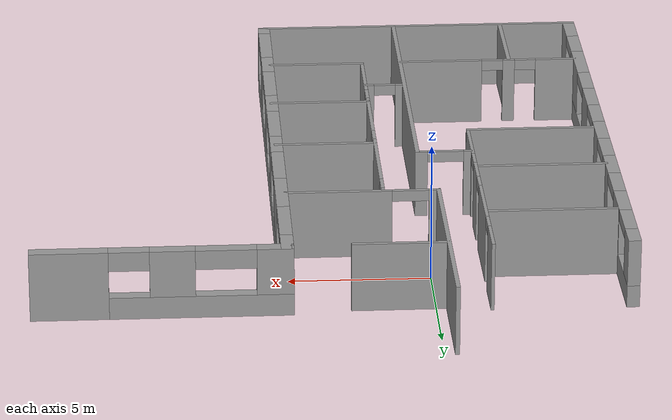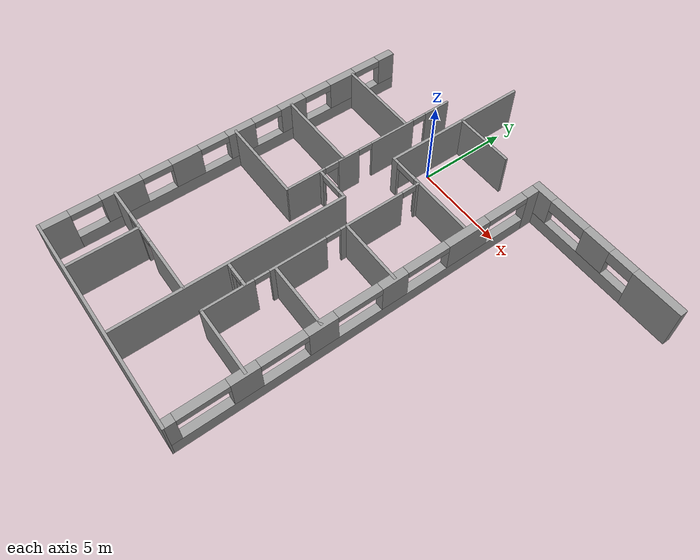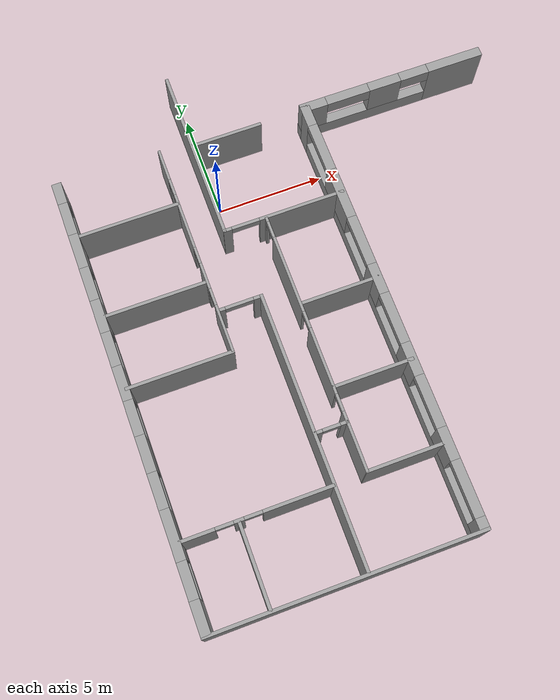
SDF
<sdf version="1.5">
 <model name="CentroPiaggio">
  <pose>1.2255 -0.6475 0 0 -0 0</pose>
  <link name="Wall_101">
   <collision name="Wall_101_Collision">
    <geometry><box><size>12.6 0.15 2.5</size></box></geometry>
    <pose>0 0 1.25 0 -0 0</pose>
   </collision>
   <visual name="Wall_101_Visual">
    <pose>0 0 1.25 0 -0 0</pose>
    <geometry><box><size>12.6 0.15 2.5</size></box></geometry>
    <material>
     <script><uri>file://media/materials/scripts/gazebo.material</uri><name>Gazebo/Grey</name></script>
     <ambient>1 1 1 1</ambient>
    </material>
   </visual>
   <pose>-1.14914 -11.073 0 0 0 -1.5708</pose>
  </link>
  <link name="Wall_103">
   <pose>-2.12541 -4.8452 0 0 -0 0</pose>
   <visual name="Wall_103_Visual_0">
    <pose>-0.873215 0 1.25 0 -0 0</pose>
    <geometry><box><size>0.353569 0.15 2.5</size></box></geometry>
    <material>
     <script><uri>file://media/materials/scripts/gazebo.material</uri><name>Gazebo/Grey</name></script>
     <ambient>1 1 1 1</ambient>
    </material>
   </visual>
   <collision name="Wall_103_Collision_0">
    <geometry><box><size>0.353569 0.15 2.5</size></box></geometry>
    <pose>-0.873215 0 1.25 0 -0 0</pose>
   </collision>
   <visual name="Wall_103_Visual_1">
    <pose>0.826785 0 1.25 0 -0 0</pose>
    <geometry><box><size>0.446431 0.15 2.5</size></box></geometry>
    <material>
     <script><uri>file://media/materials/scripts/gazebo.material</uri><name>Gazebo/Grey</name></script>
     <ambient>1 1 1 1</ambient>
    </material>
   </visual>
   <collision name="Wall_103_Collision_1">
    <geometry><box><size>0.446431 0.15 2.5</size></box></geometry>
    <pose>0.826785 0 1.25 0 -0 0</pose>
   </collision>
   <visual name="Wall_103_Visual_2">
    <pose>-0.046431 0 2.3 0 -0 0</pose>
    <geometry><box><size>1.3 0.15 0.4</size></box></geometry>
    <material>
     <script><uri>file://media/materials/scripts/gazebo.material</uri><name>Gazebo/Grey</name></script>
     <ambient>1 1 1 1</ambient>
    </material>
   </visual>
   <collision name="Wall_103_Collision_2">
    <geometry><box><size>1.3 0.15 0.4</size></box></geometry>
    <pose>-0.046431 0 2.3 0 -0 0</pose>
   </collision>
  </link>
  <link name="Wall_105">
   <pose>-4.51143 -13.6006 0 0 -0 0</pose>
   <visual name="Wall_105_Visual_0">
    <pose>-2.59656 0 1.25 0 -0 0</pose>
    <geometry><box><size>1.55688 0.15 2.5</size></box></geometry>
    <material>
     <script><uri>file://media/materials/scripts/gazebo.material</uri><name>Gazebo/Grey</name></script>
     <ambient>1 1 1 1</ambient>
    </material>
   </visual>
   <collision name="Wall_105_Collision_0">
    <geometry><box><size>1.55688 0.15 2.5</size></box></geometry>
    <pose>-2.59656 0 1.25 0 -0 0</pose>
   </collision>
   <visual name="Wall_105_Visual_1">
    <pose>-0.791931 0 1.25 0 -0 0</pose>
    <geometry><box><size>0.452371 0.15 2.5</size></box></geometry>
    <material>
     <script><uri>file://media/materials/scripts/gazebo.material</uri><name>Gazebo/Grey</name></script>
     <ambient>1 1 1 1</ambient>
    </material>
   </visual>
   <collision name="Wall_105_Collision_1">
    <geometry><box><size>0.452371 0.15 2.5</size></box></geometry>
    <pose>-0.791931 0 1.25 0 -0 0</pose>
   </collision>
   <visual name="Wall_105_Visual_2">
    <pose>1.80463 0 1.25 0 -0 0</pose>
    <geometry><box><size>3.14074 0.15 2.5</size></box></geometry>
    <material>
     <script><uri>file://media/materials/scripts/gazebo.material</uri><name>Gazebo/Grey</name></script>
     <ambient>1 1 1 1</ambient>
    </material>
   </visual>
   <collision name="Wall_105_Collision_2">
    <geometry><box><size>3.14074 0.15 2.5</size></box></geometry>
    <pose>1.80463 0 1.25 0 -0 0</pose>
   </collision>
   <visual name="Wall_105_Visual_3">
    <pose>-1.41812 0 2.3 0 -0 0</pose>
    <geometry><box><size>0.8 0.15 0.4</size></box></geometry>
    <material>
     <script><uri>file://media/materials/scripts/gazebo.material</uri><name>Gazebo/Grey</name></script>
     <ambient>1 1 1 1</ambient>
    </material>
   </visual>
   <collision name="Wall_105_Collision_3">
    <geometry><box><size>0.8 0.15 0.4</size></box></geometry>
    <pose>-1.41812 0 2.3 0 -0 0</pose>
   </collision>
   <visual name="Wall_105_Visual_4">
    <pose>-0.165745 0 2.3 0 -0 0</pose>
    <geometry><box><size>0.8 0.15 0.4</size></box></geometry>
    <material>
     <script><uri>file://media/materials/scripts/gazebo.material</uri><name>Gazebo/Grey</name></script>
     <ambient>1 1 1 1</ambient>
    </material>
   </visual>
   <collision name="Wall_105_Collision_4">
    <geometry><box><size>0.8 0.15 0.4</size></box></geometry>
    <pose>-0.165745 0 2.3 0 -0 0</pose>
   </collision>
  </link>
  <link name="Wall_107">
   <collision name="Wall_107_Collision">
    <geometry><box><size>3.75 0.15 2.5</size></box></geometry>
    <pose>0 0 1.25 0 -0 0</pose>
   </collision>
   <visual name="Wall_107_Visual">
    <pose>0 0 1.25 0 -0 0</pose>
    <geometry><box><size>3.75 0.15 2.5</size></box></geometry>
    <material>
     <script><uri>file://media/materials/scripts/gazebo.material</uri><name>Gazebo/Grey</name></script>
     <ambient>1 1 1 1</ambient>
    </material>
   </visual>
   <pose>-5.30991 -15.504 0 0 0 -1.5708</pose>
  </link>
  <link name="Wall_109">
   <pose>-0.408984 -11.3179 0 0 -0 0</pose>
   <visual name="Wall_109_Visual_0">
    <pose>-0.572763 0 1.25 0 -0 0</pose>
    <geometry><box><size>0.354473 0.15 2.5</size></box></geometry>
    <material>
     <script><uri>file://media/materials/scripts/gazebo.material</uri><name>Gazebo/Grey</name></script>
     <ambient>1 1 1 1</ambient>
    </material>
   </visual>
   <collision name="Wall_109_Collision_0">
    <geometry><box><size>0.354473 0.15 2.5</size></box></geometry>
    <pose>-0.572763 0 1.25 0 -0 0</pose>
   </collision>
   <visual name="Wall_109_Visual_1">
    <pose>0.577237 0 1.25 0 -0 0</pose>
    <geometry><box><size>0.345527 0.15 2.5</size></box></geometry>
    <material>
     <script><uri>file://media/materials/scripts/gazebo.material</uri><name>Gazebo/Grey</name></script>
     <ambient>1 1 1 1</ambient>
    </material>
   </visual>
   <collision name="Wall_109_Collision_1">
    <geometry><box><size>0.345527 0.15 2.5</size></box></geometry>
    <pose>0.577237 0 1.25 0 -0 0</pose>
   </collision>
   <visual name="Wall_109_Visual_2">
    <pose>0.004473 0 2.3 0 -0 0</pose>
    <geometry><box><size>0.8 0.15 0.4</size></box></geometry>
    <material>
     <script><uri>file://media/materials/scripts/gazebo.material</uri><name>Gazebo/Grey</name></script>
     <ambient>1 1 1 1</ambient>
    </material>
   </visual>
   <collision name="Wall_109_Collision_2">
    <geometry><box><size>0.8 0.15 0.4</size></box></geometry>
    <pose>0.004473 0 2.3 0 -0 0</pose>
   </collision>
  </link>
  <link name="Wall_19">
   <pose>8.1975 3.1475 0 0 -0 3.14159</pose>
   <visual name="Wall_19_Visual_0">
    <pose>-3.17005 0 1.25 0 -0 0</pose>
    <geometry><box><size>2.7099 0.45 2.5</size></box></geometry>
    <material>
     <script><uri>file://media/materials/scripts/gazebo.material</uri><name>Gazebo/Grey</name></script>
     <ambient>1 1 1 1</ambient>
    </material>
   </visual>
   <collision name="Wall_19_Collision_0">
    <geometry><box><size>2.7099 0.45 2.5</size></box></geometry>
    <pose>-3.17005 0 1.25 0 -0 0</pose>
   </collision>
   <visual name="Wall_19_Visual_1">
    <pose>1.35495 0 0.4 0 -0 0</pose>
    <geometry><box><size>6.3401 0.45 0.8</size></box></geometry>
    <material>
     <script><uri>file://media/materials/scripts/gazebo.material</uri><name>Gazebo/Grey</name></script>
     <ambient>1 1 1 1</ambient>
    </material>
   </visual>
   <collision name="Wall_19_Collision_1">
    <geometry><box><size>6.3401 0.45 0.8</size></box></geometry>
    <pose>1.35495 0 0.4 0 -0 0</pose>
   </collision>
   <visual name="Wall_19_Visual_2">
    <pose>0.36804 0 1.65 0 -0 0</pose>
    <geometry><box><size>1.56628 0.45 1.7</size></box></geometry>
    <material>
     <script><uri>file://media/materials/scripts/gazebo.material</uri><name>Gazebo/Grey</name></script>
     <ambient>1 1 1 1</ambient>
    </material>
   </visual>
   <collision name="Wall_19_Collision_2">
    <geometry><box><size>1.56628 0.45 1.7</size></box></geometry>
    <pose>0.36804 0 1.65 0 -0 0</pose>
   </collision>
   <visual name="Wall_19_Visual_3">
    <pose>3.88809 0 1.65 0 -0 0</pose>
    <geometry><box><size>1.27382 0.45 1.7</size></box></geometry>
    <material>
     <script><uri>file://media/materials/scripts/gazebo.material</uri><name>Gazebo/Grey</name></script>
     <ambient>1 1 1 1</ambient>
    </material>
   </visual>
   <collision name="Wall_19_Collision_3">
    <geometry><box><size>1.27382 0.45 1.7</size></box></geometry>
    <pose>3.88809 0 1.65 0 -0 0</pose>
   </collision>
   <visual name="Wall_19_Visual_4">
    <pose>-1.1151 0 2.15 0 -0 0</pose>
    <geometry><box><size>1.4 0.45 0.7</size></box></geometry>
    <material>
     <script><uri>file://media/materials/scripts/gazebo.material</uri><name>Gazebo/Grey</name></script>
     <ambient>1 1 1 1</ambient>
    </material>
   </visual>
   <collision name="Wall_19_Collision_4">
    <geometry><box><size>1.4 0.45 0.7</size></box></geometry>
    <pose>-1.1151 0 2.15 0 -0 0</pose>
   </collision>
   <visual name="Wall_19_Visual_5">
    <pose>2.20118 0 2.15 0 -0 0</pose>
    <geometry><box><size>2.1 0.45 0.7</size></box></geometry>
    <material>
     <script><uri>file://media/materials/scripts/gazebo.material</uri><name>Gazebo/Grey</name></script>
     <ambient>1 1 1 1</ambient>
    </material>
   </visual>
   <collision name="Wall_19_Collision_5">
    <geometry><box><size>2.1 0.45 0.7</size></box></geometry>
    <pose>2.20118 0 2.15 0 -0 0</pose>
   </collision>
  </link>
  <link name="Wall_21">
   <pose>3.8975 -7.0025 0 0 0 -1.5708</pose>
   <visual name="Wall_21_Visual_0">
    <pose>-9.77867 0 1.25 0 -0 0</pose>
    <geometry><box><size>1.19265 0.45 2.5</size></box></geometry>
    <material>
     <script><uri>file://media/materials/scripts/gazebo.material</uri><name>Gazebo/Grey</name></script>
     <ambient>1 1 1 1</ambient>
    </material>
   </visual>
   <collision name="Wall_21_Collision_0">
    <geometry><box><size>1.19265 0.45 2.5</size></box></geometry>
    <pose>-9.77867 0 1.25 0 -0 0</pose>
   </collision>
   <visual name="Wall_21_Visual_1">
    <pose>0.596327 0 0.4 0 -0 0</pose>
    <geometry><box><size>19.5573 0.45 0.8</size></box></geometry>
    <material>
     <script><uri>file://media/materials/scripts/gazebo.material</uri><name>Gazebo/Grey</name></script>
     <ambient>1 1 1 1</ambient>
    </material>
   </visual>
   <collision name="Wall_21_Collision_1">
    <geometry><box><size>19.5573 0.45 0.8</size></box></geometry>
    <pose>0.596327 0 0.4 0 -0 0</pose>
   </collision>
   <visual name="Wall_21_Visual_2">
    <pose>-5.5417 0 1.65 0 -0 0</pose>
    <geometry><box><size>2.48129 0.45 1.7</size></box></geometry>
    <material>
     <script><uri>file://media/materials/scripts/gazebo.material</uri><name>Gazebo/Grey</name></script>
     <ambient>1 1 1 1</ambient>
    </material>
   </visual>
   <collision name="Wall_21_Collision_2">
    <geometry><box><size>2.48129 0.45 1.7</size></box></geometry>
    <pose>-5.5417 0 1.65 0 -0 0</pose>
   </collision>
   <visual name="Wall_21_Visual_3">
    <pose>-1.17358 0 1.65 0 -0 0</pose>
    <geometry><box><size>1.45494 0.45 1.7</size></box></geometry>
    <material>
     <script><uri>file://media/materials/scripts/gazebo.material</uri><name>Gazebo/Grey</name></script>
     <ambient>1 1 1 1</ambient>
    </material>
   </visual>
   <collision name="Wall_21_Collision_3">
    <geometry><box><size>1.45494 0.45 1.7</size></box></geometry>
    <pose>-1.17358 0 1.65 0 -0 0</pose>
   </collision>
   <visual name="Wall_21_Visual_4">
    <pose>2.72109 0 1.65 0 -0 0</pose>
    <geometry><box><size>1.5344 0.45 1.7</size></box></geometry>
    <material>
     <script><uri>file://media/materials/scripts/gazebo.material</uri><name>Gazebo/Grey</name></script>
     <ambient>1 1 1 1</ambient>
    </material>
   </visual>
   <collision name="Wall_21_Collision_4">
    <geometry><box><size>1.5344 0.45 1.7</size></box></geometry>
    <pose>2.72109 0 1.65 0 -0 0</pose>
   </collision>
   <visual name="Wall_21_Visual_5">
    <pose>6.61582 0 1.65 0 -0 0</pose>
    <geometry><box><size>1.45505 0.45 1.7</size></box></geometry>
    <material>
     <script><uri>file://media/materials/scripts/gazebo.material</uri><name>Gazebo/Grey</name></script>
     <ambient>1 1 1 1</ambient>
    </material>
   </visual>
   <collision name="Wall_21_Collision_5">
    <geometry><box><size>1.45505 0.45 1.7</size></box></geometry>
    <pose>6.61582 0 1.65 0 -0 0</pose>
   </collision>
   <visual name="Wall_21_Visual_6">
    <pose>10.1092 0 1.65 0 -0 0</pose>
    <geometry><box><size>0.531661 0.45 1.7</size></box></geometry>
    <material>
     <script><uri>file://media/materials/scripts/gazebo.material</uri><name>Gazebo/Grey</name></script>
     <ambient>1 1 1 1</ambient>
    </material>
   </visual>
   <collision name="Wall_21_Collision_6">
    <geometry><box><size>0.531661 0.45 1.7</size></box></geometry>
    <pose>10.1092 0 1.65 0 -0 0</pose>
   </collision>
   <visual name="Wall_21_Visual_7">
    <pose>-7.98235 0 2.3 0 -0 0</pose>
    <geometry><box><size>2.4 0.45 0.4</size></box></geometry>
    <material>
     <script><uri>file://media/materials/scripts/gazebo.material</uri><name>Gazebo/Grey</name></script>
     <ambient>1 1 1 1</ambient>
    </material>
   </visual>
   <collision name="Wall_21_Collision_7">
    <geometry><box><size>2.4 0.45 0.4</size></box></geometry>
    <pose>-7.98235 0 2.3 0 -0 0</pose>
   </collision>
   <visual name="Wall_21_Visual_8">
    <pose>-3.10105 0 2.3 0 -0 0</pose>
    <geometry><box><size>2.4 0.45 0.4</size></box></geometry>
    <material>
     <script><uri>file://media/materials/scripts/gazebo.material</uri><name>Gazebo/Grey</name></script>
     <ambient>1 1 1 1</ambient>
    </material>
   </visual>
   <collision name="Wall_21_Collision_8">
    <geometry><box><size>2.4 0.45 0.4</size></box></geometry>
    <pose>-3.10105 0 2.3 0 -0 0</pose>
   </collision>
   <visual name="Wall_21_Visual_9">
    <pose>0.753893 0 2.3 0 -0 0</pose>
    <geometry><box><size>2.4 0.45 0.4</size></box></geometry>
    <material>
     <script><uri>file://media/materials/scripts/gazebo.material</uri><name>Gazebo/Grey</name></script>
     <ambient>1 1 1 1</ambient>
    </material>
   </visual>
   <collision name="Wall_21_Collision_9">
    <geometry><box><size>2.4 0.45 0.4</size></box></geometry>
    <pose>0.753893 0 2.3 0 -0 0</pose>
   </collision>
   <visual name="Wall_21_Visual_10">
    <pose>4.68829 0 2.3 0 -0 0</pose>
    <geometry><box><size>2.4 0.45 0.4</size></box></geometry>
    <material>
     <script><uri>file://media/materials/scripts/gazebo.material</uri><name>Gazebo/Grey</name></script>
     <ambient>1 1 1 1</ambient>
    </material>
   </visual>
   <collision name="Wall_21_Collision_10">
    <geometry><box><size>2.4 0.45 0.4</size></box></geometry>
    <pose>4.68829 0 2.3 0 -0 0</pose>
   </collision>
   <visual name="Wall_21_Visual_11">
    <pose>8.59334 0 2.3 0 -0 0</pose>
    <geometry><box><size>2.5 0.45 0.4</size></box></geometry>
    <material>
     <script><uri>file://media/materials/scripts/gazebo.material</uri><name>Gazebo/Grey</name></script>
     <ambient>1 1 1 1</ambient>
    </material>
   </visual>
   <collision name="Wall_21_Collision_11">
    <geometry><box><size>2.5 0.45 0.4</size></box></geometry>
    <pose>8.59334 0 2.3 0 -0 0</pose>
   </collision>
  </link>
  <link name="Wall_25">
   <pose>-8.0075 -7.01 0 0 -0 1.5708</pose>
   <visual name="Wall_25_Visual_0">
    <pose>-9.65219 0 1.25 0 -0 0</pose>
    <geometry><box><size>1.46063 0.45 2.5</size></box></geometry>
    <material>
     <script><uri>file://media/materials/scripts/gazebo.material</uri><name>Gazebo/Grey</name></script>
     <ambient>1 1 1 1</ambient>
    </material>
   </visual>
   <collision name="Wall_25_Collision_0">
    <geometry><box><size>1.46063 0.45 2.5</size></box></geometry>
    <pose>-9.65219 0 1.25 0 -0 0</pose>
   </collision>
   <visual name="Wall_25_Visual_1">
    <pose>0.730313 0 0.4 0 -0 0</pose>
    <geometry><box><size>19.3044 0.45 0.8</size></box></geometry>
    <material>
     <script><uri>file://media/materials/scripts/gazebo.material</uri><name>Gazebo/Grey</name></script>
     <ambient>1 1 1 1</ambient>
    </material>
   </visual>
   <collision name="Wall_25_Collision_1">
    <geometry><box><size>19.3044 0.45 0.8</size></box></geometry>
    <pose>0.730313 0 0.4 0 -0 0</pose>
   </collision>
   <visual name="Wall_25_Visual_2">
    <pose>-6.22251 0 1.65 0 -0 0</pose>
    <geometry><box><size>2.19872 0.45 1.7</size></box></geometry>
    <material>
     <script><uri>file://media/materials/scripts/gazebo.material</uri><name>Gazebo/Grey</name></script>
     <ambient>1 1 1 1</ambient>
    </material>
   </visual>
   <collision name="Wall_25_Collision_2">
    <geometry><box><size>2.19872 0.45 1.7</size></box></geometry>
    <pose>-6.22251 0 1.65 0 -0 0</pose>
   </collision>
   <visual name="Wall_25_Visual_3">
    <pose>-2.70411 0 1.65 0 -0 0</pose>
    <geometry><box><size>1.63809 0.45 1.7</size></box></geometry>
    <material>
     <script><uri>file://media/materials/scripts/gazebo.material</uri><name>Gazebo/Grey</name></script>
     <ambient>1 1 1 1</ambient>
    </material>
   </visual>
   <collision name="Wall_25_Collision_3">
    <geometry><box><size>1.63809 0.45 1.7</size></box></geometry>
    <pose>-2.70411 0 1.65 0 -0 0</pose>
   </collision>
   <visual name="Wall_25_Visual_4">
    <pose>0.509824 0 1.65 0 -0 0</pose>
    <geometry><box><size>1.58977 0.45 1.7</size></box></geometry>
    <material>
     <script><uri>file://media/materials/scripts/gazebo.material</uri><name>Gazebo/Grey</name></script>
     <ambient>1 1 1 1</ambient>
    </material>
   </visual>
   <collision name="Wall_25_Collision_4">
    <geometry><box><size>1.58977 0.45 1.7</size></box></geometry>
    <pose>0.509824 0 1.65 0 -0 0</pose>
   </collision>
   <visual name="Wall_25_Visual_5">
    <pose>3.6894 0 1.65 0 -0 0</pose>
    <geometry><box><size>1.56939 0.45 1.7</size></box></geometry>
    <material>
     <script><uri>file://media/materials/scripts/gazebo.material</uri><name>Gazebo/Grey</name></script>
     <ambient>1 1 1 1</ambient>
    </material>
   </visual>
   <collision name="Wall_25_Collision_5">
    <geometry><box><size>1.56939 0.45 1.7</size></box></geometry>
    <pose>3.6894 0 1.65 0 -0 0</pose>
   </collision>
   <visual name="Wall_25_Visual_6">
    <pose>6.91128 0 1.65 0 -0 0</pose>
    <geometry><box><size>1.67437 0.45 1.7</size></box></geometry>
    <material>
     <script><uri>file://media/materials/scripts/gazebo.material</uri><name>Gazebo/Grey</name></script>
     <ambient>1 1 1 1</ambient>
    </material>
   </visual>
   <collision name="Wall_25_Collision_6">
    <geometry><box><size>1.67437 0.45 1.7</size></box></geometry>
    <pose>6.91128 0 1.65 0 -0 0</pose>
   </collision>
   <visual name="Wall_25_Visual_7">
    <pose>9.86548 0 1.65 0 -0 0</pose>
    <geometry><box><size>1.03404 0.45 1.7</size></box></geometry>
    <material>
     <script><uri>file://media/materials/scripts/gazebo.material</uri><name>Gazebo/Grey</name></script>
     <ambient>1 1 1 1</ambient>
    </material>
   </visual>
   <collision name="Wall_25_Collision_7">
    <geometry><box><size>1.03404 0.45 1.7</size></box></geometry>
    <pose>9.86548 0 1.65 0 -0 0</pose>
   </collision>
   <visual name="Wall_25_Visual_8">
    <pose>-8.12187 0 2.3 0 -0 0</pose>
    <geometry><box><size>1.6 0.45 0.4</size></box></geometry>
    <material>
     <script><uri>file://media/materials/scripts/gazebo.material</uri><name>Gazebo/Grey</name></script>
     <ambient>1 1 1 1</ambient>
    </material>
   </visual>
   <collision name="Wall_25_Collision_8">
    <geometry><box><size>1.6 0.45 0.4</size></box></geometry>
    <pose>-8.12187 0 2.3 0 -0 0</pose>
   </collision>
   <visual name="Wall_25_Visual_9">
    <pose>-4.32315 0 2.3 0 -0 0</pose>
    <geometry><box><size>1.6 0.45 0.4</size></box></geometry>
    <material>
     <script><uri>file://media/materials/scripts/gazebo.material</uri><name>Gazebo/Grey</name></script>
     <ambient>1 1 1 1</ambient>
    </material>
   </visual>
   <collision name="Wall_25_Collision_9">
    <geometry><box><size>1.6 0.45 0.4</size></box></geometry>
    <pose>-4.32315 0 2.3 0 -0 0</pose>
   </collision>
   <visual name="Wall_25_Visual_10">
    <pose>-1.08506 0 2.3 0 -0 0</pose>
    <geometry><box><size>1.6 0.45 0.4</size></box></geometry>
    <material>
     <script><uri>file://media/materials/scripts/gazebo.material</uri><name>Gazebo/Grey</name></script>
     <ambient>1 1 1 1</ambient>
    </material>
   </visual>
   <collision name="Wall_25_Collision_10">
    <geometry><box><size>1.6 0.45 0.4</size></box></geometry>
    <pose>-1.08506 0 2.3 0 -0 0</pose>
   </collision>
   <visual name="Wall_25_Visual_11">
    <pose>2.10471 0 2.3 0 -0 0</pose>
    <geometry><box><size>1.6 0.45 0.4</size></box></geometry>
    <material>
     <script><uri>file://media/materials/scripts/gazebo.material</uri><name>Gazebo/Grey</name></script>
     <ambient>1 1 1 1</ambient>
    </material>
   </visual>
   <collision name="Wall_25_Collision_11">
    <geometry><box><size>1.6 0.45 0.4</size></box></geometry>
    <pose>2.10471 0 2.3 0 -0 0</pose>
   </collision>
   <visual name="Wall_25_Visual_12">
    <pose>5.27409 0 2.3 0 -0 0</pose>
    <geometry><box><size>1.6 0.45 0.4</size></box></geometry>
    <material>
     <script><uri>file://media/materials/scripts/gazebo.material</uri><name>Gazebo/Grey</name></script>
     <ambient>1 1 1 1</ambient>
    </material>
   </visual>
   <collision name="Wall_25_Collision_12">
    <geometry><box><size>1.6 0.45 0.4</size></box></geometry>
    <pose>5.27409 0 2.3 0 -0 0</pose>
   </collision>
   <visual name="Wall_25_Visual_13">
    <pose>8.54846 0 2.3 0 -0 0</pose>
    <geometry><box><size>1.6 0.45 0.4</size></box></geometry>
    <material>
     <script><uri>file://media/materials/scripts/gazebo.material</uri><name>Gazebo/Grey</name></script>
     <ambient>1 1 1 1</ambient>
    </material>
   </visual>
   <collision name="Wall_25_Collision_13">
    <geometry><box><size>1.6 0.45 0.4</size></box></geometry>
    <pose>8.54846 0 2.3 0 -0 0</pose>
   </collision>
  </link>
  <link name="Wall_27">
   <collision name="Wall_27_Collision">
    <geometry><box><size>12.35 0.15 2.5</size></box></geometry>
    <pose>0 0 1.25 0 -0 0</pose>
   </collision>
   <visual name="Wall_27_Visual">
    <pose>0 0 1.25 0 -0 0</pose>
    <geometry><box><size>12.35 0.15 2.5</size></box></geometry>
    <material>
     <script><uri>file://media/materials/scripts/gazebo.material</uri><name>Gazebo/Grey</name></script>
     <ambient>1 1 1 1</ambient>
    </material>
   </visual>
   <pose>-2.0555 -17.3895 0 0 -0 0</pose>
  </link>
  <link name="Wall_74">
   <collision name="Wall_74_Collision">
    <geometry><box><size>3.365 0.15 2.5</size></box></geometry>
    <pose>0 0 1.25 0 -0 0</pose>
   </collision>
   <visual name="Wall_74_Visual">
    <pose>0 0 1.25 0 -0 0</pose>
    <geometry><box><size>3.365 0.15 2.5</size></box></geometry>
    <material>
     <script><uri>file://media/materials/scripts/gazebo.material</uri><name>Gazebo/Grey</name></script>
     <ambient>1 1 1 1</ambient>
    </material>
   </visual>
   <pose>0.019064 3.07085 0 0 -0 0</pose>
  </link>
  <link name="Wall_79">
   <collision name="Wall_79_Collision">
    <geometry><box><size>8.25 0.15 2.5</size></box></geometry>
    <pose>0 0 1.25 0 -0 0</pose>
   </collision>
   <visual name="Wall_79_Visual">
    <pose>0 0 1.25 0 -0 0</pose>
    <geometry><box><size>8.25 0.15 2.5</size></box></geometry>
    <material>
     <script><uri>file://media/materials/scripts/gazebo.material</uri><name>Gazebo/Grey</name></script>
     <ambient>1 1 1 1</ambient>
    </material>
   </visual>
   <pose>-1.64627 2.65219 0 0 0 -1.5708</pose>
  </link>
  <link name="Wall_81">
   <pose>1.15714 -1.40818 0 0 -0 3.14159</pose>
   <visual name="Wall_81_Visual_0">
    <pose>-0.856394 0 1.25 0 -0 0</pose>
    <geometry><box><size>4.03721 0.15 2.5</size></box></geometry>
    <material>
     <script><uri>file://media/materials/scripts/gazebo.material</uri><name>Gazebo/Grey</name></script>
     <ambient>1 1 1 1</ambient>
    </material>
   </visual>
   <collision name="Wall_81_Collision_0">
    <geometry><box><size>4.03721 0.15 2.5</size></box></geometry>
    <pose>-0.856394 0 1.25 0 -0 0</pose>
   </collision>
   <visual name="Wall_81_Visual_1">
    <pose>2.66861 0 1.25 0 -0 0</pose>
    <geometry><box><size>0.412787 0.15 2.5</size></box></geometry>
    <material>
     <script><uri>file://media/materials/scripts/gazebo.material</uri><name>Gazebo/Grey</name></script>
     <ambient>1 1 1 1</ambient>
    </material>
   </visual>
   <collision name="Wall_81_Collision_1">
    <geometry><box><size>0.412787 0.15 2.5</size></box></geometry>
    <pose>2.66861 0 1.25 0 -0 0</pose>
   </collision>
   <visual name="Wall_81_Visual_2">
    <pose>1.81221 0 2.3 0 -0 0</pose>
    <geometry><box><size>1.3 0.15 0.4</size></box></geometry>
    <material>
     <script><uri>file://media/materials/scripts/gazebo.material</uri><name>Gazebo/Grey</name></script>
     <ambient>1 1 1 1</ambient>
    </material>
   </visual>
   <collision name="Wall_81_Collision_2">
    <geometry><box><size>1.3 0.15 0.4</size></box></geometry>
    <pose>1.81221 0 2.3 0 -0 0</pose>
   </collision>
  </link>
  <link name="Wall_83">
   <pose>0.313093 -7.49771 0 0 0 -1.5708</pose>
   <visual name="Wall_83_Visual_0">
    <pose>-5.96202 0 1.25 0 -0 0</pose>
    <geometry><box><size>0.225968 0.13 2.5</size></box></geometry>
    <material>
     <script><uri>file://media/materials/scripts/gazebo.material</uri><name>Gazebo/Grey</name></script>
     <ambient>1 1 1 1</ambient>
    </material>
   </visual>
   <collision name="Wall_83_Collision_0">
    <geometry><box><size>0.225968 0.13 2.5</size></box></geometry>
    <pose>-5.96202 0 1.25 0 -0 0</pose>
   </collision>
   <visual name="Wall_83_Visual_1">
    <pose>-3.2019 0 1.25 0 -0 0</pose>
    <geometry><box><size>3.69427 0.13 2.5</size></box></geometry>
    <material>
     <script><uri>file://media/materials/scripts/gazebo.material</uri><name>Gazebo/Grey</name></script>
     <ambient>1 1 1 1</ambient>
    </material>
   </visual>
   <collision name="Wall_83_Collision_1">
    <geometry><box><size>3.69427 0.13 2.5</size></box></geometry>
    <pose>-3.2019 0 1.25 0 -0 0</pose>
   </collision>
   <visual name="Wall_83_Visual_2">
    <pose>0.996073 0 1.25 0 -0 0</pose>
    <geometry><box><size>3.10168 0.13 2.5</size></box></geometry>
    <material>
     <script><uri>file://media/materials/scripts/gazebo.material</uri><name>Gazebo/Grey</name></script>
     <ambient>1 1 1 1</ambient>
    </material>
   </visual>
   <collision name="Wall_83_Collision_2">
    <geometry><box><size>3.10168 0.13 2.5</size></box></geometry>
    <pose>0.996073 0 1.25 0 -0 0</pose>
   </collision>
   <visual name="Wall_83_Visual_3">
    <pose>4.71096 0 1.25 0 -0 0</pose>
    <geometry><box><size>2.72809 0.13 2.5</size></box></geometry>
    <material>
     <script><uri>file://media/materials/scripts/gazebo.material</uri><name>Gazebo/Grey</name></script>
     <ambient>1 1 1 1</ambient>
    </material>
   </visual>
   <collision name="Wall_83_Collision_3">
    <geometry><box><size>2.72809 0.13 2.5</size></box></geometry>
    <pose>4.71096 0 1.25 0 -0 0</pose>
   </collision>
   <visual name="Wall_83_Visual_4">
    <pose>-5.44903 0 2.3 0 -0 0</pose>
    <geometry><box><size>0.8 0.13 0.4</size></box></geometry>
    <material>
     <script><uri>file://media/materials/scripts/gazebo.material</uri><name>Gazebo/Grey</name></script>
     <ambient>1 1 1 1</ambient>
    </material>
   </visual>
   <collision name="Wall_83_Collision_4">
    <geometry><box><size>0.8 0.13 0.4</size></box></geometry>
    <pose>-5.44903 0 2.3 0 -0 0</pose>
   </collision>
   <visual name="Wall_83_Visual_5">
    <pose>-0.954764 0 2.3 0 -0 0</pose>
    <geometry><box><size>0.8 0.13 0.4</size></box></geometry>
    <material>
     <script><uri>file://media/materials/scripts/gazebo.material</uri><name>Gazebo/Grey</name></script>
     <ambient>1 1 1 1</ambient>
    </material>
   </visual>
   <collision name="Wall_83_Collision_5">
    <geometry><box><size>0.8 0.13 0.4</size></box></geometry>
    <pose>-0.954764 0 2.3 0 -0 0</pose>
   </collision>
   <visual name="Wall_83_Visual_6">
    <pose>2.94691 0 2.3 0 -0 0</pose>
    <geometry><box><size>0.8 0.13 0.4</size></box></geometry>
    <material>
     <script><uri>file://media/materials/scripts/gazebo.material</uri><name>Gazebo/Grey</name></script>
     <ambient>1 1 1 1</ambient>
    </material>
   </visual>
   <collision name="Wall_83_Collision_6">
    <geometry><box><size>0.8 0.13 0.4</size></box></geometry>
    <pose>2.94691 0 2.3 0 -0 0</pose>
   </collision>
  </link>
  <link name="Wall_85">
   <collision name="Wall_85_Collision">
    <geometry><box><size>3.75 0.15 2.5</size></box></geometry>
    <pose>0 0 1.25 0 -0 0</pose>
   </collision>
   <visual name="Wall_85_Visual">
    <pose>0 0 1.25 0 -0 0</pose>
    <geometry><box><size>3.75 0.15 2.5</size></box></geometry>
    <material>
     <script><uri>file://media/materials/scripts/gazebo.material</uri><name>Gazebo/Grey</name></script>
     <ambient>1 1 1 1</ambient>
    </material>
   </visual>
   <pose>2.12401 -13.538 0 0 -0 0</pose>
  </link>
  <link name="Wall_87">
   <collision name="Wall_87_Collision">
    <geometry><box><size>3.7 0.15 2.5</size></box></geometry>
    <pose>0 0 1.25 0 -0 0</pose>
   </collision>
   <visual name="Wall_87_Visual">
    <pose>0 0 1.25 0 -0 0</pose>
    <geometry><box><size>3.7 0.15 2.5</size></box></geometry>
    <material>
     <script><uri>file://media/materials/scripts/gazebo.material</uri><name>Gazebo/Grey</name></script>
     <ambient>1 1 1 1</ambient>
    </material>
   </visual>
   <pose>2.13681 -5.76668 0 0 -0 0</pose>
  </link>
  <link name="Wall_89">
   <collision name="Wall_89_Collision">
    <geometry><box><size>3.7 0.15 2.5</size></box></geometry>
    <pose>0 0 1.25 0 -0 0</pose>
   </collision>
   <visual name="Wall_89_Visual">
    <pose>0 0 1.25 0 -0 0</pose>
    <geometry><box><size>3.7 0.15 2.5</size></box></geometry>
    <material>
     <script><uri>file://media/materials/scripts/gazebo.material</uri><name>Gazebo/Grey</name></script>
     <ambient>1 1 1 1</ambient>
    </material>
   </visual>
   <pose>2.12296 -9.72863 0 0 -0 0</pose>
  </link>
  <link name="Wall_93">
   <pose>-3.14707 -1.72376 0 0 0 -1.5708</pose>
   <visual name="Wall_93_Visual_0">
    <pose>-4.31403 0 1.25 0 -0 0</pose>
    <geometry><box><size>1.541941 0.12 2.5</size></box></geometry>
    <material>
     <script><uri>file://media/materials/scripts/gazebo.material</uri><name>Gazebo/Grey</name></script>
     <ambient>1 1 1 1</ambient>
    </material>
   </visual>
   <collision name="Wall_93_Collision_0">
    <geometry><box><size>1.541941 0.12 2.5</size></box></geometry>
    <pose>-4.31403 0 1.25 0 -0 0</pose>
   </collision>
   <visual name="Wall_93_Visual_1">
    <pose>-1.38723 0 1.25 0 -0 0</pose>
    <geometry><box><size>2.71165 0.12 2.5</size></box></geometry>
    <material>
     <script><uri>file://media/materials/scripts/gazebo.material</uri><name>Gazebo/Grey</name></script>
     <ambient>1 1 1 1</ambient>
    </material>
   </visual>
   <collision name="Wall_93_Collision_1">
    <geometry><box><size>2.71165 0.12 2.5</size></box></geometry>
    <pose>-1.38723 0 1.25 0 -0 0</pose>
   </collision>
   <visual name="Wall_93_Visual_2">
    <pose>1.40151 0 1.25 0 -0 0</pose>
    <geometry><box><size>1.26584 0.12 2.5</size></box></geometry>
    <material>
     <script><uri>file://media/materials/scripts/gazebo.material</uri><name>Gazebo/Grey</name></script>
     <ambient>1 1 1 1</ambient>
    </material>
   </visual>
   <collision name="Wall_93_Collision_2">
    <geometry><box><size>1.26584 0.12 2.5</size></box></geometry>
    <pose>1.40151 0 1.25 0 -0 0</pose>
   </collision>
   <visual name="Wall_93_Visual_3">
    <pose>3.95972 0 1.25 0 -0 0</pose>
    <geometry><box><size>2.25057 0.12 2.5</size></box></geometry>
    <material>
     <script><uri>file://media/materials/scripts/gazebo.material</uri><name>Gazebo/Grey</name></script>
     <ambient>1 1 1 1</ambient>
    </material>
   </visual>
   <collision name="Wall_93_Collision_3">
    <geometry><box><size>2.25057 0.12 2.5</size></box></geometry>
    <pose>3.95972 0 1.25 0 -0 0</pose>
   </collision>
   <visual name="Wall_93_Visual_4">
    <pose>-3.14306 0 2.3 0 -0 0</pose>
    <geometry><box><size>0.8 0.12 0.4</size></box></geometry>
    <material>
     <script><uri>file://media/materials/scripts/gazebo.material</uri><name>Gazebo/Grey</name></script>
     <ambient>1 1 1 1</ambient>
    </material>
   </visual>
   <collision name="Wall_93_Collision_4">
    <geometry><box><size>0.8 0.12 0.4</size></box></geometry>
    <pose>-3.14306 0 2.3 0 -0 0</pose>
   </collision>
   <visual name="Wall_93_Visual_5">
    <pose>0.368595 0 2.3 0 -0 0</pose>
    <geometry><box><size>0.8 0.12 0.4</size></box></geometry>
    <material>
     <script><uri>file://media/materials/scripts/gazebo.material</uri><name>Gazebo/Grey</name></script>
     <ambient>1 1 1 1</ambient>
    </material>
   </visual>
   <collision name="Wall_93_Collision_5">
    <geometry><box><size>0.8 0.12 0.4</size></box></geometry>
    <pose>0.368595 0 2.3 0 -0 0</pose>
   </collision>
   <visual name="Wall_93_Visual_6">
    <pose>2.43443 0 2.3 0 -0 0</pose>
    <geometry><box><size>0.8 0.12 0.4</size></box></geometry>
    <material>
     <script><uri>file://media/materials/scripts/gazebo.material</uri><name>Gazebo/Grey</name></script>
     <ambient>1 1 1 1</ambient>
    </material>
   </visual>
   <collision name="Wall_93_Collision_6">
    <geometry><box><size>0.8 0.12 0.4</size></box></geometry>
    <pose>2.43443 0 2.3 0 -0 0</pose>
   </collision>
  </link>
  <link name="Wall_95">
   <collision name="Wall_95_Collision">
    <geometry><box><size>4.75 0.15 2.5</size></box></geometry>
    <pose>0 0 1.25 0 -0 0</pose>
   </collision>
   <visual name="Wall_95_Visual">
    <pose>0 0 1.25 0 -0 0</pose>
    <geometry><box><size>4.75 0.15 2.5</size></box></geometry>
    <material>
     <script><uri>file://media/materials/scripts/gazebo.material</uri><name>Gazebo/Grey</name></script>
     <ambient>1 1 1 1</ambient>
    </material>
   </visual>
   <pose>-5.5116 -3.41468 0 0 -0 0</pose>
  </link>
  <link name="Wall_97">
   <collision name="Wall_97_Collision">
    <geometry><box><size>4.75 0.15 2.5</size></box></geometry>
    <pose>0 0 1.25 0 -0 0</pose>
   </collision>
   <visual name="Wall_97_Visual">
    <pose>0 0 1.25 0 -0 0</pose>
    <geometry><box><size>4.75 0.15 2.5</size></box></geometry>
    <material>
     <script><uri>file://media/materials/scripts/gazebo.material</uri><name>Gazebo/Grey</name></script>
     <ambient>1 1 1 1</ambient>
    </material>
   </visual>
   <pose>-5.50979 0.553969 0 0 -0 0</pose>
  </link>
  <link name="Wall_99">
   <collision name="Wall_99_Collision">
    <geometry><box><size>4.9 0.15 2.5</size></box></geometry>
    <pose>0 0 1.25 0 -0 0</pose>
   </collision>
   <visual name="Wall_99_Visual">
    <pose>0 0 1.25 0 -0 0</pose>
    <geometry><box><size>4.9 0.15 2.5</size></box></geometry>
    <material>
     <script><uri>file://media/materials/scripts/gazebo.material</uri><name>Gazebo/Grey</name></script>
     <ambient>1 1 1 1</ambient>
    </material>
   </visual>
   <pose>-5.53792 -6.80007 0 0 -0 0</pose>
  </link>
  <static>1</static>
 </model>
</sdf>
